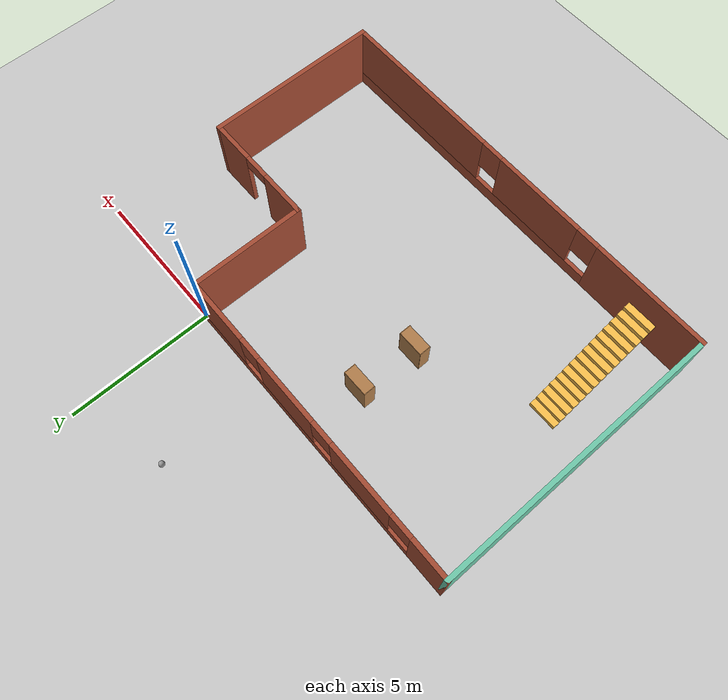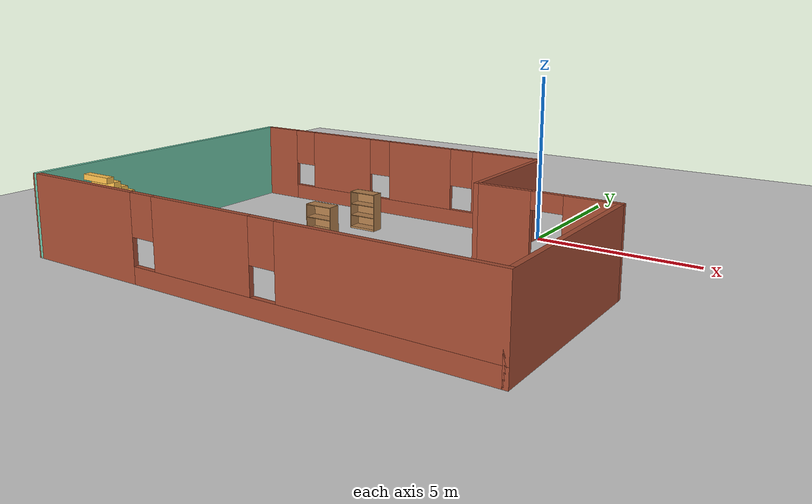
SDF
<sdf version="1.6">
 <world name="default">
  <light name="sun" type="directional">
   <pose>0 0 10 0 -0 0</pose>
   <diffuse>0.8 0.8 0.8 1</diffuse>
   <specular>0.2 0.2 0.2 1</specular>
   <attenuation>
    <range>1000</range>
    <constant>0.9</constant>
    <linear>0.01</linear>
    <quadratic>0.001</quadratic>
   </attenuation>
   <direction>-0.5 0.1 -0.9</direction>
  </light>
  <model name="ground_plane">
   <static>1</static>
   <link name="link">
    <collision name="collision">
     <geometry><plane><normal>0 0 1</normal><size>100 100</size></plane></geometry>
     <surface>
      <contact><collide_bitmask>65535</collide_bitmask></contact>
      <friction><ode><mu>100</mu><mu2>50</mu2></ode></friction>
     </surface>
    </collision>
    <visual name="visual">
     <cast_shadows>0</cast_shadows>
     <geometry><plane><normal>0 0 1</normal><size>100 100</size></plane></geometry>
     <material>
      <script><uri>file://media/materials/scripts/gazebo.material</uri><name>Gazebo/Grey</name></script>
     </material>
    </visual>
   </link>
  </model>
  <gravity>0 0 -9.8</gravity>
  <magnetic_field>6e-06 2.3e-05 -4.2e-05</magnetic_field>
  <atmosphere type="adiabatic"/>
  <physics name="default_physics" default="0" type="ode">
   <max_step_size>0.001</max_step_size>
   <real_time_factor>1</real_time_factor>
   <real_time_update_rate>1000</real_time_update_rate>
  </physics>
  <scene><ambient>0.4 0.4 0.4 1</ambient><background>0.7 0.7 0.7 1</background><shadows>1</shadows></scene>
  <spherical_coordinates>
   <surface_model>EARTH_WGS84</surface_model>
   <latitude_deg>0</latitude_deg>
   <longitude_deg>0</longitude_deg>
   <elevation>0</elevation>
   <heading_deg>0</heading_deg>
  </spherical_coordinates>
  <model name="brickhouse2">
   <pose>-3.511 -4.925 0 0 -0 0</pose>
   <link name="Stairs_0">
    <visual name="Stairs_0_Visual_0">
     <pose>-5.7138 -0.879543 0.083333 0 -0 0</pose>
     <geometry><box><size>1 0.233333 0.166667</size></box></geometry>
     <material>
      <script><uri>file://media/materials/scripts/gazebo.material</uri><name>Gazebo/Grey</name></script>
      <ambient>1 0.764706 0.305882 1</ambient>
     </material>
     <meta><layer>0</layer></meta>
    </visual>
    <collision name="Stairs_0_Collision_0">
     <geometry><box><size>1 0.233333 0.166667</size></box></geometry>
     <pose>-5.7138 -0.879543 0.083333 0 -0 0</pose>
    </collision>
    <visual name="Stairs_0_Visual_1">
     <pose>-5.7138 -1.11288 0.25 0 -0 0</pose>
     <geometry><box><size>1 0.233333 0.166667</size></box></geometry>
     <material>
      <script><uri>file://media/materials/scripts/gazebo.material</uri><name>Gazebo/Grey</name></script>
      <ambient>1 0.764706 0.305882 1</ambient>
     </material>
     <meta><layer>0</layer></meta>
    </visual>
    <collision name="Stairs_0_Collision_1">
     <geometry><box><size>1 0.233333 0.166667</size></box></geometry>
     <pose>-5.7138 -1.11288 0.25 0 -0 0</pose>
    </collision>
    <visual name="Stairs_0_Visual_2">
     <pose>-5.7138 -1.34621 0.416667 0 -0 0</pose>
     <geometry><box><size>1 0.233333 0.166667</size></box></geometry>
     <material>
      <script><uri>file://media/materials/scripts/gazebo.material</uri><name>Gazebo/Grey</name></script>
      <ambient>1 0.764706 0.305882 1</ambient>
     </material>
     <meta><layer>0</layer></meta>
    </visual>
    <collision name="Stairs_0_Collision_2">
     <geometry><box><size>1 0.233333 0.166667</size></box></geometry>
     <pose>-5.7138 -1.34621 0.416667 0 -0 0</pose>
    </collision>
    <visual name="Stairs_0_Visual_3">
     <pose>-5.7138 -1.57954 0.583333 0 -0 0</pose>
     <geometry><box><size>1 0.233333 0.166667</size></box></geometry>
     <material>
      <script><uri>file://media/materials/scripts/gazebo.material</uri><name>Gazebo/Grey</name></script>
      <ambient>1 0.764706 0.305882 1</ambient>
     </material>
     <meta><layer>0</layer></meta>
    </visual>
    <collision name="Stairs_0_Collision_3">
     <geometry><box><size>1 0.233333 0.166667</size></box></geometry>
     <pose>-5.7138 -1.57954 0.583333 0 -0 0</pose>
    </collision>
    <visual name="Stairs_0_Visual_4">
     <pose>-5.7138 -1.81288 0.75 0 -0 0</pose>
     <geometry><box><size>1 0.233333 0.166667</size></box></geometry>
     <material>
      <script><uri>file://media/materials/scripts/gazebo.material</uri><name>Gazebo/Grey</name></script>
      <ambient>1 0.764706 0.305882 1</ambient>
     </material>
     <meta><layer>0</layer></meta>
    </visual>
    <collision name="Stairs_0_Collision_4">
     <geometry><box><size>1 0.233333 0.166667</size></box></geometry>
     <pose>-5.7138 -1.81288 0.75 0 -0 0</pose>
    </collision>
    <visual name="Stairs_0_Visual_5">
     <pose>-5.7138 -2.04621 0.916667 0 -0 0</pose>
     <geometry><box><size>1 0.233333 0.166667</size></box></geometry>
     <material>
      <script><uri>file://media/materials/scripts/gazebo.material</uri><name>Gazebo/Grey</name></script>
      <ambient>1 0.764706 0.305882 1</ambient>
     </material>
     <meta><layer>0</layer></meta>
    </visual>
    <collision name="Stairs_0_Collision_5">
     <geometry><box><size>1 0.233333 0.166667</size></box></geometry>
     <pose>-5.7138 -2.04621 0.916667 0 -0 0</pose>
    </collision>
    <visual name="Stairs_0_Visual_6">
     <pose>-5.7138 -2.27954 1.08333 0 -0 0</pose>
     <geometry><box><size>1 0.233333 0.166667</size></box></geometry>
     <material>
      <script><uri>file://media/materials/scripts/gazebo.material</uri><name>Gazebo/Grey</name></script>
      <ambient>1 0.764706 0.305882 1</ambient>
     </material>
     <meta><layer>0</layer></meta>
    </visual>
    <collision name="Stairs_0_Collision_6">
     <geometry><box><size>1 0.233333 0.166667</size></box></geometry>
     <pose>-5.7138 -2.27954 1.08333 0 -0 0</pose>
    </collision>
    <visual name="Stairs_0_Visual_7">
     <pose>-5.7138 -2.51288 1.25 0 -0 0</pose>
     <geometry><box><size>1 0.233333 0.166667</size></box></geometry>
     <material>
      <script><uri>file://media/materials/scripts/gazebo.material</uri><name>Gazebo/Grey</name></script>
      <ambient>1 0.764706 0.305882 1</ambient>
     </material>
     <meta><layer>0</layer></meta>
    </visual>
    <collision name="Stairs_0_Collision_7">
     <geometry><box><size>1 0.233333 0.166667</size></box></geometry>
     <pose>-5.7138 -2.51288 1.25 0 -0 0</pose>
    </collision>
    <visual name="Stairs_0_Visual_8">
     <pose>-5.7138 -2.74621 1.41667 0 -0 0</pose>
     <geometry><box><size>1 0.233333 0.166667</size></box></geometry>
     <material>
      <script><uri>file://media/materials/scripts/gazebo.material</uri><name>Gazebo/Grey</name></script>
      <ambient>1 0.764706 0.305882 1</ambient>
     </material>
     <meta><layer>0</layer></meta>
    </visual>
    <collision name="Stairs_0_Collision_8">
     <geometry><box><size>1 0.233333 0.166667</size></box></geometry>
     <pose>-5.7138 -2.74621 1.41667 0 -0 0</pose>
    </collision>
    <visual name="Stairs_0_Visual_9">
     <pose>-5.7138 -2.97954 1.58333 0 -0 0</pose>
     <geometry><box><size>1 0.233333 0.166667</size></box></geometry>
     <material>
      <script><uri>file://media/materials/scripts/gazebo.material</uri><name>Gazebo/Grey</name></script>
      <ambient>1 0.764706 0.305882 1</ambient>
     </material>
     <meta><layer>0</layer></meta>
    </visual>
    <collision name="Stairs_0_Collision_9">
     <geometry><box><size>1 0.233333 0.166667</size></box></geometry>
     <pose>-5.7138 -2.97954 1.58333 0 -0 0</pose>
    </collision>
    <visual name="Stairs_0_Visual_10">
     <pose>-5.7138 -3.21288 1.75 0 -0 0</pose>
     <geometry><box><size>1 0.233333 0.166667</size></box></geometry>
     <material>
      <script><uri>file://media/materials/scripts/gazebo.material</uri><name>Gazebo/Grey</name></script>
      <ambient>1 0.764706 0.305882 1</ambient>
     </material>
     <meta><layer>0</layer></meta>
    </visual>
    <collision name="Stairs_0_Collision_10">
     <geometry><box><size>1 0.233333 0.166667</size></box></geometry>
     <pose>-5.7138 -3.21288 1.75 0 -0 0</pose>
    </collision>
    <visual name="Stairs_0_Visual_11">
     <pose>-5.7138 -3.44621 1.91667 0 -0 0</pose>
     <geometry><box><size>1 0.233333 0.166667</size></box></geometry>
     <material>
      <script><uri>file://media/materials/scripts/gazebo.material</uri><name>Gazebo/Grey</name></script>
      <ambient>1 0.764706 0.305882 1</ambient>
     </material>
     <meta><layer>0</layer></meta>
    </visual>
    <collision name="Stairs_0_Collision_11">
     <geometry><box><size>1 0.233333 0.166667</size></box></geometry>
     <pose>-5.7138 -3.44621 1.91667 0 -0 0</pose>
    </collision>
    <visual name="Stairs_0_Visual_12">
     <pose>-5.7138 -3.67954 2.08333 0 -0 0</pose>
     <geometry><box><size>1 0.233333 0.166667</size></box></geometry>
     <material>
      <script><uri>file://media/materials/scripts/gazebo.material</uri><name>Gazebo/Grey</name></script>
      <ambient>1 0.764706 0.305882 1</ambient>
     </material>
     <meta><layer>0</layer></meta>
    </visual>
    <collision name="Stairs_0_Collision_12">
     <geometry><box><size>1 0.233333 0.166667</size></box></geometry>
     <pose>-5.7138 -3.67954 2.08333 0 -0 0</pose>
    </collision>
    <visual name="Stairs_0_Visual_13">
     <pose>-5.7138 -3.91288 2.25 0 -0 0</pose>
     <geometry><box><size>1 0.233333 0.166667</size></box></geometry>
     <material>
      <script><uri>file://media/materials/scripts/gazebo.material</uri><name>Gazebo/Grey</name></script>
      <ambient>1 0.764706 0.305882 1</ambient>
     </material>
     <meta><layer>0</layer></meta>
    </visual>
    <collision name="Stairs_0_Collision_13">
     <geometry><box><size>1 0.233333 0.166667</size></box></geometry>
     <pose>-5.7138 -3.91288 2.25 0 -0 0</pose>
    </collision>
    <visual name="Stairs_0_Visual_14">
     <pose>-5.7138 -4.14621 2.41667 0 -0 0</pose>
     <geometry><box><size>1 0.233333 0.166667</size></box></geometry>
     <material>
      <script><uri>file://media/materials/scripts/gazebo.material</uri><name>Gazebo/Grey</name></script>
      <ambient>1 0.764706 0.305882 1</ambient>
     </material>
     <meta><layer>0</layer></meta>
    </visual>
    <collision name="Stairs_0_Collision_14">
     <geometry><box><size>1 0.233333 0.166667</size></box></geometry>
     <pose>-5.7138 -4.14621 2.41667 0 -0 0</pose>
    </collision>
   </link>
   <link name="Wall_0">
    <collision name="Wall_0_Collision">
     <geometry><box><size>10 0.15 2.5</size></box></geometry>
     <pose>0 0 1.25 0 -0 0</pose>
    </collision>
    <visual name="Wall_0_Visual">
     <pose>0 0 1.25 0 -0 0</pose>
     <geometry><box><size>10 0.15 2.5</size></box></geometry>
     <material>
      <script><uri>file://media/materials/scripts/gazebo.material</uri><name>Gazebo/Grey</name></script>
      <ambient>0.435294 0.796078 0.67451 1</ambient>
     </material>
     <meta><layer>0</layer></meta>
    </visual>
    <pose>-7.425 0 0 0 0 -1.5708</pose>
   </link>
   <link name="Wall_10">
    <pose>5.425 1.075 0 0 -0 3.14159</pose>
    <visual name="Wall_10_Visual_0">
     <pose>-1.2907 0 1.25 0 -0 0</pose>
     <geometry><box><size>1.56859 0.15 2.5</size></box></geometry>
     <material>
      <script><uri>file://media/materials/scripts/gazebo.material</uri><name>Gazebo/Bricks</name></script>
      <ambient>1 1 1 1</ambient>
     </material>
     <meta><layer>0</layer></meta>
    </visual>
    <collision name="Wall_10_Collision_0">
     <geometry><box><size>1.56859 0.15 2.5</size></box></geometry>
     <pose>-1.2907 0 1.25 0 -0 0</pose>
    </collision>
    <visual name="Wall_10_Visual_1">
     <pose>1.2343 0 1.25 0 -0 0</pose>
     <geometry><box><size>1.68141 0.15 2.5</size></box></geometry>
     <material>
      <script><uri>file://media/materials/scripts/gazebo.material</uri><name>Gazebo/Bricks</name></script>
      <ambient>1 1 1 1</ambient>
     </material>
     <meta><layer>0</layer></meta>
    </visual>
    <collision name="Wall_10_Collision_1">
     <geometry><box><size>1.68141 0.15 2.5</size></box></geometry>
     <pose>1.2343 0 1.25 0 -0 0</pose>
    </collision>
    <visual name="Wall_10_Visual_2">
     <pose>-0.056409 0 2.25 0 -0 0</pose>
     <geometry><box><size>0.9 0.15 0.5</size></box></geometry>
     <material>
      <script><uri>file://media/materials/scripts/gazebo.material</uri><name>Gazebo/Bricks</name></script>
      <ambient>1 1 1 1</ambient>
     </material>
     <meta><layer>0</layer></meta>
    </visual>
    <collision name="Wall_10_Collision_2">
     <geometry><box><size>0.9 0.15 0.5</size></box></geometry>
     <pose>-0.056409 0 2.25 0 -0 0</pose>
    </collision>
   </link>
   <link name="Wall_2">
    <pose>0 -4.925 0 0 -0 0</pose>
    <visual name="Wall_2_Visual_0">
     <pose>-5.4422 0 1.25 0 -0 0</pose>
     <geometry><box><size>4.11561 0.15 2.5</size></box></geometry>
     <material>
      <script><uri>file://media/materials/scripts/gazebo.material</uri><name>Gazebo/Bricks</name></script>
      <ambient>1 1 1 1</ambient>
     </material>
     <meta><layer>0</layer></meta>
    </visual>
    <collision name="Wall_2_Collision_0">
     <geometry><box><size>4.11561 0.15 2.5</size></box></geometry>
     <pose>-5.4422 0 1.25 0 -0 0</pose>
    </collision>
    <visual name="Wall_2_Visual_1">
     <pose>2.0578 0 0.25 0 -0 0</pose>
     <geometry><box><size>10.8844 0.15 0.5</size></box></geometry>
     <material>
      <script><uri>file://media/materials/scripts/gazebo.material</uri><name>Gazebo/Bricks</name></script>
      <ambient>1 1 1 1</ambient>
     </material>
     <meta><layer>0</layer></meta>
    </visual>
    <collision name="Wall_2_Collision_1">
     <geometry><box><size>10.8844 0.15 0.5</size></box></geometry>
     <pose>2.0578 0 0.25 0 -0 0</pose>
    </collision>
    <visual name="Wall_2_Visual_2">
     <pose>-0.937335 0 1.5 0 -0 0</pose>
     <geometry><box><size>3.29412 0.15 2</size></box></geometry>
     <material>
      <script><uri>file://media/materials/scripts/gazebo.material</uri><name>Gazebo/Bricks</name></script>
      <ambient>1 1 1 1</ambient>
     </material>
     <meta><layer>0</layer></meta>
    </visual>
    <collision name="Wall_2_Collision_2">
     <geometry><box><size>3.29412 0.15 2</size></box></geometry>
     <pose>-0.937335 0 1.5 0 -0 0</pose>
    </collision>
    <visual name="Wall_2_Visual_3">
     <pose>4.50486 0 1.5 0 -0 0</pose>
     <geometry><box><size>5.99028 0.15 2</size></box></geometry>
     <material>
      <script><uri>file://media/materials/scripts/gazebo.material</uri><name>Gazebo/Bricks</name></script>
      <ambient>1 1 1 1</ambient>
     </material>
     <meta><layer>0</layer></meta>
    </visual>
    <collision name="Wall_2_Collision_3">
     <geometry><box><size>5.99028 0.15 2</size></box></geometry>
     <pose>4.50486 0 1.5 0 -0 0</pose>
    </collision>
    <visual name="Wall_2_Visual_4">
     <pose>-2.98439 0 1.9 0 -0 0</pose>
     <geometry><box><size>0.8 0.15 1.2</size></box></geometry>
     <material>
      <script><uri>file://media/materials/scripts/gazebo.material</uri><name>Gazebo/Bricks</name></script>
      <ambient>1 1 1 1</ambient>
     </material>
     <meta><layer>0</layer></meta>
    </visual>
    <collision name="Wall_2_Collision_4">
     <geometry><box><size>0.8 0.15 1.2</size></box></geometry>
     <pose>-2.98439 0 1.9 0 -0 0</pose>
    </collision>
    <visual name="Wall_2_Visual_5">
     <pose>1.10972 0 1.9 0 -0 0</pose>
     <geometry><box><size>0.8 0.15 1.2</size></box></geometry>
     <material>
      <script><uri>file://media/materials/scripts/gazebo.material</uri><name>Gazebo/Bricks</name></script>
      <ambient>1 1 1 1</ambient>
     </material>
     <meta><layer>0</layer></meta>
    </visual>
    <collision name="Wall_2_Collision_5">
     <geometry><box><size>0.8 0.15 1.2</size></box></geometry>
     <pose>1.10972 0 1.9 0 -0 0</pose>
    </collision>
   </link>
   <link name="Wall_4">
    <pose>-2 4.925 0 0 -0 0</pose>
    <visual name="Wall_4_Visual_0">
     <pose>-4.78377 0 1.25 0 -0 0</pose>
     <geometry><box><size>1.43246 0.15 2.5</size></box></geometry>
     <material>
      <script><uri>file://media/materials/scripts/gazebo.material</uri><name>Gazebo/Bricks</name></script>
      <ambient>1 1 1 1</ambient>
     </material>
     <meta><layer>0</layer></meta>
    </visual>
    <collision name="Wall_4_Collision_0">
     <geometry><box><size>1.43246 0.15 2.5</size></box></geometry>
     <pose>-4.78377 0 1.25 0 -0 0</pose>
    </collision>
    <visual name="Wall_4_Visual_1">
     <pose>0.716228 0 0.25 0 -0 0</pose>
     <geometry><box><size>9.56754 0.15 0.5</size></box></geometry>
     <material>
      <script><uri>file://media/materials/scripts/gazebo.material</uri><name>Gazebo/Bricks</name></script>
      <ambient>1 1 1 1</ambient>
     </material>
     <meta><layer>0</layer></meta>
    </visual>
    <collision name="Wall_4_Collision_1">
     <geometry><box><size>9.56754 0.15 0.5</size></box></geometry>
     <pose>0.716228 0 0.25 0 -0 0</pose>
    </collision>
    <visual name="Wall_4_Visual_2">
     <pose>-2.03684 0 1.5 0 -0 0</pose>
     <geometry><box><size>2.46142 0.15 2</size></box></geometry>
     <material>
      <script><uri>file://media/materials/scripts/gazebo.material</uri><name>Gazebo/Bricks</name></script>
      <ambient>1 1 1 1</ambient>
     </material>
     <meta><layer>0</layer></meta>
    </visual>
    <collision name="Wall_4_Collision_2">
     <geometry><box><size>2.46142 0.15 2</size></box></geometry>
     <pose>-2.03684 0 1.5 0 -0 0</pose>
    </collision>
    <visual name="Wall_4_Visual_3">
     <pose>1.18988 0 1.5 0 -0 0</pose>
     <geometry><box><size>2.39202 0.15 2</size></box></geometry>
     <material>
      <script><uri>file://media/materials/scripts/gazebo.material</uri><name>Gazebo/Bricks</name></script>
      <ambient>1 1 1 1</ambient>
     </material>
     <meta><layer>0</layer></meta>
    </visual>
    <collision name="Wall_4_Collision_3">
     <geometry><box><size>2.39202 0.15 2</size></box></geometry>
     <pose>1.18988 0 1.5 0 -0 0</pose>
    </collision>
    <visual name="Wall_4_Visual_4">
     <pose>4.34295 0 1.5 0 -0 0</pose>
     <geometry><box><size>2.3141 0.15 2</size></box></geometry>
     <material>
      <script><uri>file://media/materials/scripts/gazebo.material</uri><name>Gazebo/Bricks</name></script>
      <ambient>1 1 1 1</ambient>
     </material>
     <meta><layer>0</layer></meta>
    </visual>
    <collision name="Wall_4_Collision_4">
     <geometry><box><size>2.3141 0.15 2</size></box></geometry>
     <pose>4.34295 0 1.5 0 -0 0</pose>
    </collision>
    <visual name="Wall_4_Visual_5">
     <pose>-3.66754 0 1.9 0 -0 0</pose>
     <geometry><box><size>0.8 0.15 1.2</size></box></geometry>
     <material>
      <script><uri>file://media/materials/scripts/gazebo.material</uri><name>Gazebo/Bricks</name></script>
      <ambient>1 1 1 1</ambient>
     </material>
     <meta><layer>0</layer></meta>
    </visual>
    <collision name="Wall_4_Collision_5">
     <geometry><box><size>0.8 0.15 1.2</size></box></geometry>
     <pose>-3.66754 0 1.9 0 -0 0</pose>
    </collision>
    <visual name="Wall_4_Visual_6">
     <pose>-0.406128 0 1.9 0 -0 0</pose>
     <geometry><box><size>0.8 0.15 1.2</size></box></geometry>
     <material>
      <script><uri>file://media/materials/scripts/gazebo.material</uri><name>Gazebo/Bricks</name></script>
      <ambient>1 1 1 1</ambient>
     </material>
     <meta><layer>0</layer></meta>
    </visual>
    <collision name="Wall_4_Collision_6">
     <geometry><box><size>0.8 0.15 1.2</size></box></geometry>
     <pose>-0.406128 0 1.9 0 -0 0</pose>
    </collision>
    <visual name="Wall_4_Visual_7">
     <pose>2.7859 0 1.9 0 -0 0</pose>
     <geometry><box><size>0.8 0.15 1.2</size></box></geometry>
     <material>
      <script><uri>file://media/materials/scripts/gazebo.material</uri><name>Gazebo/Bricks</name></script>
      <ambient>1 1 1 1</ambient>
     </material>
     <meta><layer>0</layer></meta>
    </visual>
    <collision name="Wall_4_Collision_7">
     <geometry><box><size>0.8 0.15 1.2</size></box></geometry>
     <pose>2.7859 0 1.9 0 -0 0</pose>
    </collision>
   </link>
   <link name="Wall_6">
    <collision name="Wall_6_Collision">
     <geometry><box><size>4 0.15 2.5</size></box></geometry>
     <pose>0 0 1.25 0 -0 0</pose>
    </collision>
    <visual name="Wall_6_Visual">
     <pose>0 0 1.25 0 -0 0</pose>
     <geometry><box><size>4 0.15 2.5</size></box></geometry>
     <material>
      <script><uri>file://media/materials/scripts/gazebo.material</uri><name>Gazebo/Bricks</name></script>
      <ambient>1 1 1 1</ambient>
     </material>
     <meta><layer>0</layer></meta>
    </visual>
    <pose>3.425 3 0 0 0 -1.5708</pose>
   </link>
   <link name="Wall_8">
    <collision name="Wall_8_Collision">
     <geometry><box><size>6.15 0.15 2.5</size></box></geometry>
     <pose>0 0 1.25 0 -0 0</pose>
    </collision>
    <visual name="Wall_8_Visual">
     <pose>0 0 1.25 0 -0 0</pose>
     <geometry><box><size>6.15 0.15 2.5</size></box></geometry>
     <material>
      <script><uri>file://media/materials/scripts/gazebo.material</uri><name>Gazebo/Bricks</name></script>
      <ambient>1 1 1 1</ambient>
     </material>
     <meta><layer>0</layer></meta>
    </visual>
    <pose>7.425 -1.925 0 0 -0 1.5708</pose>
   </link>
   <static>1</static>
  </model>
  <model name="bookshelf">
   <static>1</static>
   <link name="link">
    <inertial><mass>1</mass></inertial>
    <collision name="back">
     <pose>0 0.005 0.6 0 -0 0</pose>
     <geometry><box><size>0.9 0.01 1.2</size></box></geometry>
    </collision>
    <visual name="visual1">
     <pose>0 0.005 0.6 0 -0 0</pose>
     <geometry><box><size>0.9 0.01 1.2</size></box></geometry>
     <material>
      <script><uri>file://media/materials/scripts/gazebo.material</uri><name>Gazebo/Wood</name></script>
     </material>
    </visual>
    <collision name="left_side">
     <pose>0.45 -0.195 0.6 0 -0 0</pose>
     <geometry><box><size>0.02 0.4 1.2</size></box></geometry>
    </collision>
    <visual name="visual2">
     <pose>0.45 -0.195 0.6 0 -0 0</pose>
     <geometry><box><size>0.02 0.4 1.2</size></box></geometry>
     <material>
      <script><uri>file://media/materials/scripts/gazebo.material</uri><name>Gazebo/Wood</name></script>
     </material>
    </visual>
    <collision name="right_side">
     <pose>-0.45 -0.195 0.6 0 -0 0</pose>
     <geometry><box><size>0.02 0.4 1.2</size></box></geometry>
    </collision>
    <visual name="visual3">
     <pose>-0.45 -0.195 0.6 0 -0 0</pose>
     <geometry><box><size>0.02 0.4 1.2</size></box></geometry>
     <material>
      <script><uri>file://media/materials/scripts/gazebo.material</uri><name>Gazebo/Wood</name></script>
     </material>
    </visual>
    <collision name="bottom">
     <pose>0 -0.195 0.03 0 -0 0</pose>
     <geometry><box><size>0.88 0.4 0.06</size></box></geometry>
    </collision>
    <visual name="visual4">
     <pose>0 -0.195 0.03 0 -0 0</pose>
     <geometry><box><size>0.88 0.4 0.06</size></box></geometry>
     <material>
      <script><uri>file://media/materials/scripts/gazebo.material</uri><name>Gazebo/Wood</name></script>
     </material>
    </visual>
    <collision name="top">
     <pose>0 -0.195 1.19 0 -0 0</pose>
     <geometry><box><size>0.88 0.4 0.02</size></box></geometry>
    </collision>
    <visual name="visual5">
     <pose>0 -0.195 1.19 0 -0 0</pose>
     <geometry><box><size>0.88 0.4 0.02</size></box></geometry>
     <material>
      <script><uri>file://media/materials/scripts/gazebo.material</uri><name>Gazebo/Wood</name></script>
     </material>
    </visual>
    <collision name="low_shelf">
     <pose>0 -0.195 0.43 0 -0 0</pose>
     <geometry><box><size>0.88 0.4 0.02</size></box></geometry>
    </collision>
    <visual name="visual6">
     <pose>0 -0.195 0.43 0 -0 0</pose>
     <geometry><box><size>0.88 0.4 0.02</size></box></geometry>
     <material>
      <script><uri>file://media/materials/scripts/gazebo.material</uri><name>Gazebo/Wood</name></script>
     </material>
    </visual>
    <collision name="high_shelf">
     <pose>0 -0.195 0.8 0 -0 0</pose>
     <geometry><box><size>0.88 0.4 0.02</size></box></geometry>
    </collision>
    <visual name="visual7">
     <pose>0 -0.195 0.8 0 -0 0</pose>
     <geometry><box><size>0.88 0.4 0.02</size></box></geometry>
     <material>
      <script><uri>file://media/materials/scripts/gazebo.material</uri><name>Gazebo/Wood</name></script>
     </material>
    </visual>
   </link>
   <pose>-5.09399 -1.84994 0 0 -0 0</pose>
  </model>
  <model name="bookshelf_0">
   <static>1</static>
   <link name="link">
    <inertial><mass>1</mass></inertial>
    <collision name="back">
     <pose>0 0.005 0.6 0 -0 0</pose>
     <geometry><box><size>0.9 0.01 1.2</size></box></geometry>
    </collision>
    <visual name="visual1">
     <pose>0 0.005 0.6 0 -0 0</pose>
     <geometry><box><size>0.9 0.01 1.2</size></box></geometry>
     <material>
      <script><uri>file://media/materials/scripts/gazebo.material</uri><name>Gazebo/Wood</name></script>
     </material>
    </visual>
    <collision name="left_side">
     <pose>0.45 -0.195 0.6 0 -0 0</pose>
     <geometry><box><size>0.02 0.4 1.2</size></box></geometry>
    </collision>
    <visual name="visual2">
     <pose>0.45 -0.195 0.6 0 -0 0</pose>
     <geometry><box><size>0.02 0.4 1.2</size></box></geometry>
     <material>
      <script><uri>file://media/materials/scripts/gazebo.material</uri><name>Gazebo/Wood</name></script>
     </material>
    </visual>
    <collision name="right_side">
     <pose>-0.45 -0.195 0.6 0 -0 0</pose>
     <geometry><box><size>0.02 0.4 1.2</size></box></geometry>
    </collision>
    <visual name="visual3">
     <pose>-0.45 -0.195 0.6 0 -0 0</pose>
     <geometry><box><size>0.02 0.4 1.2</size></box></geometry>
     <material>
      <script><uri>file://media/materials/scripts/gazebo.material</uri><name>Gazebo/Wood</name></script>
     </material>
    </visual>
    <collision name="bottom">
     <pose>0 -0.195 0.03 0 -0 0</pose>
     <geometry><box><size>0.88 0.4 0.06</size></box></geometry>
    </collision>
    <visual name="visual4">
     <pose>0 -0.195 0.03 0 -0 0</pose>
     <geometry><box><size>0.88 0.4 0.06</size></box></geometry>
     <material>
      <script><uri>file://media/materials/scripts/gazebo.material</uri><name>Gazebo/Wood</name></script>
     </material>
    </visual>
    <collision name="top">
     <pose>0 -0.195 1.19 0 -0 0</pose>
     <geometry><box><size>0.88 0.4 0.02</size></box></geometry>
    </collision>
    <visual name="visual5">
     <pose>0 -0.195 1.19 0 -0 0</pose>
     <geometry><box><size>0.88 0.4 0.02</size></box></geometry>
     <material>
      <script><uri>file://media/materials/scripts/gazebo.material</uri><name>Gazebo/Wood</name></script>
     </material>
    </visual>
    <collision name="low_shelf">
     <pose>0 -0.195 0.43 0 -0 0</pose>
     <geometry><box><size>0.88 0.4 0.02</size></box></geometry>
    </collision>
    <visual name="visual6">
     <pose>0 -0.195 0.43 0 -0 0</pose>
     <geometry><box><size>0.88 0.4 0.02</size></box></geometry>
     <material>
      <script><uri>file://media/materials/scripts/gazebo.material</uri><name>Gazebo/Wood</name></script>
     </material>
    </visual>
    <collision name="high_shelf">
     <pose>0 -0.195 0.8 0 -0 0</pose>
     <geometry><box><size>0.88 0.4 0.02</size></box></geometry>
    </collision>
    <visual name="visual7">
     <pose>0 -0.195 0.8 0 -0 0</pose>
     <geometry><box><size>0.88 0.4 0.02</size></box></geometry>
     <material>
      <script><uri>file://media/materials/scripts/gazebo.material</uri><name>Gazebo/Wood</name></script>
     </material>
    </visual>
   </link>
   <pose>-5.22765 -3.91178 0 0 -0 0</pose>
  </model>
  <model name="my_ball">
   <link name="link_0">
    <inertial>
     <mass>1</mass>
     <inertia><ixx>0.1</ixx><ixy>0</ixy><ixz>0</ixz><iyy>0.1</iyy><iyz>0</iyz><izz>0.1</izz></inertia>
    </inertial>
    <visual name="visual">
     <geometry><sphere><radius>0.1</radius></sphere></geometry>
     <material>
      <lighting>1</lighting>
      <script><uri>file://media/materials/scripts/gazebo.material</uri><name>Gazebo/Grey</name></script>
      <shader type="pixel"><normal_map>__default__</normal_map></shader>
      <ambient>1 1 1 1</ambient>
      <diffuse>1 1 1 1</diffuse>
      <specular>1 1 1 1</specular>
      <emissive>1 1 1 1</emissive>
     </material>
    </visual>
    <collision name="collision">
     <geometry><sphere><radius>0.1</radius></sphere></geometry>
     <surface>
      <friction>
       <ode><mu>1</mu><mu2>1</mu2><fdir1>0 0 0</fdir1><slip1>0</slip1><slip2>0</slip2></ode>
       <torsional>
        <coefficient>1</coefficient>
        <patch_radius>0</patch_radius>
        <surface_radius>0</surface_radius>
        <use_patch_radius>1</use_patch_radius>
        <ode><slip>0</slip></ode>
       </torsional>
      </friction>
      <bounce><restitution_coefficient>0</restitution_coefficient><threshold>1e+06</threshold></bounce>
      <contact>
       <collide_without_contact>0</collide_without_contact>
       <collide_without_contact_bitmask>1</collide_without_contact_bitmask>
       <collide_bitmask>1</collide_bitmask>
       <ode>
        <soft_cfm>0</soft_cfm>
        <soft_erp>0.2</soft_erp>
        <kp>1e+13</kp>
        <kd>1</kd>
        <max_vel>0.01</max_vel>
        <min_depth>0</min_depth>
       </ode>
       <bullet>
        <split_impulse>1</split_impulse>
        <split_impulse_penetration_threshold>-0.01</split_impulse_penetration_threshold>
        <soft_cfm>0</soft_cfm>
        <soft_erp>0.2</soft_erp>
        <kp>1e+13</kp>
        <kd>1</kd>
       </bullet>
      </contact>
     </surface>
    </collision>
   </link>
   <static>0</static>
   <pose>-3.01201 3.80383 0.1 0 -0 0</pose>
  </model>
 </world>
</sdf>
